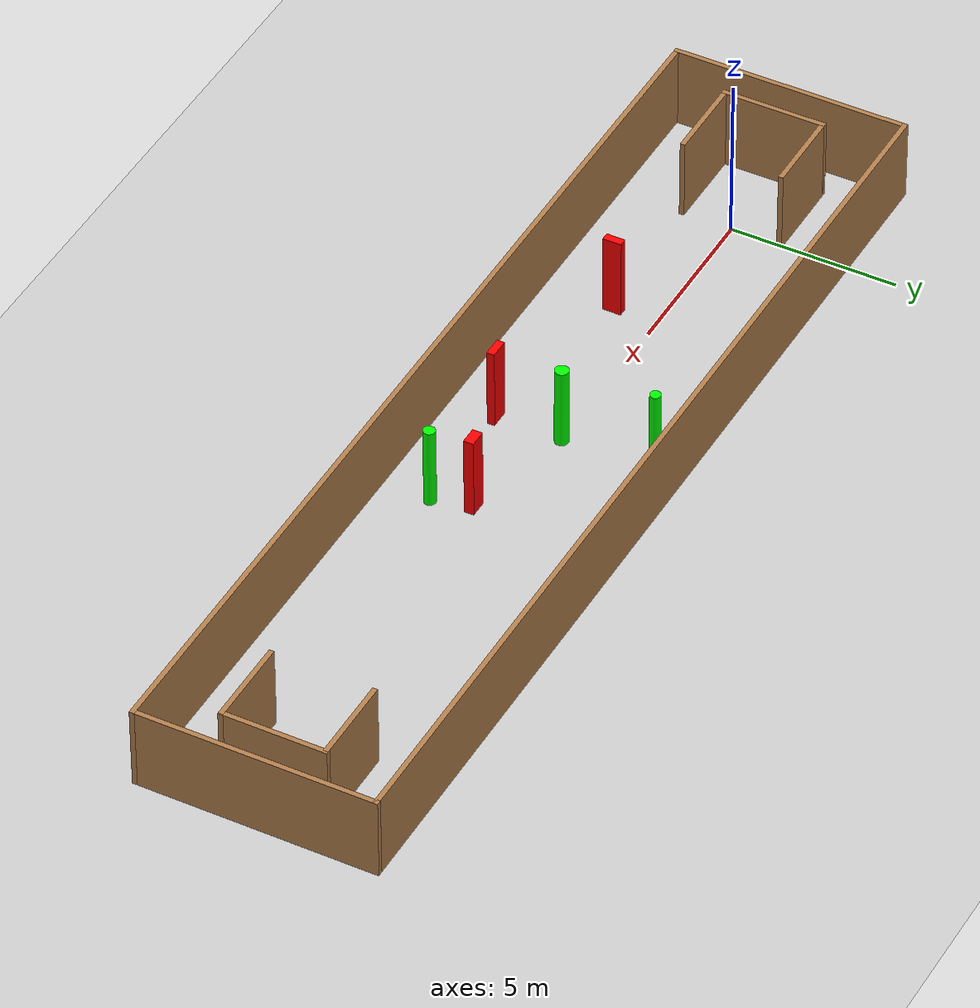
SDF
<sdf version="1.7">
 <world name="default">
  <light name="sun" type="directional">
   <pose>0 0 10 0 -0 0</pose>
   <diffuse>0.8 0.8 0.8 1</diffuse>
   <specular>0.2 0.2 0.2 1</specular>
   <attenuation>
    <range>1000</range>
    <constant>0.9</constant>
    <linear>0.01</linear>
    <quadratic>0.001</quadratic>
   </attenuation>
   <direction>-0.5 0.1 -0.9</direction>
   <spot><inner_angle>0</inner_angle><outer_angle>0</outer_angle><falloff>0</falloff></spot>
  </light>
  <model name="ground_plane">
   <static>1</static>
   <link name="link">
    <collision name="collision">
     <geometry><plane><normal>0 0 1</normal><size>100 100</size></plane></geometry>
     <surface>
      <contact><collide_bitmask>65535</collide_bitmask></contact>
      <friction><ode><mu>100</mu><mu2>50</mu2></ode></friction>
     </surface>
    </collision>
    <visual name="visual">
     <cast_shadows>0</cast_shadows>
     <geometry><plane><normal>0 0 1</normal><size>100 100</size></plane></geometry>
     <material>
      <script><uri>file://media/materials/scripts/gazebo.material</uri><name>Gazebo/Grey</name></script>
     </material>
    </visual>
   </link>
  </model>
  <gravity>0 0 -9.8</gravity>
  <magnetic_field>6e-06 2.3e-05 -4.2e-05</magnetic_field>
  <atmosphere type="adiabatic"/>
  <physics type="ode">
   <max_step_size>0.001</max_step_size>
   <real_time_factor>1</real_time_factor>
   <real_time_update_rate>1000</real_time_update_rate>
  </physics>
  <scene><ambient>0.4 0.4 0.4 1</ambient><background>0.7 0.7 0.7 1</background><shadows>1</shadows></scene>
  <spherical_coordinates>
   <surface_model>EARTH_WGS84</surface_model>
   <latitude_deg>0</latitude_deg>
   <longitude_deg>0</longitude_deg>
   <elevation>0</elevation>
   <heading_deg>0</heading_deg>
  </spherical_coordinates>
  <model name="my_base_walls">
   <link name="Wall_0">
    <collision name="Wall_0_Collision">
     <geometry><box><size>7.15 0.15 2.5</size></box></geometry>
     <pose>0 0 1.25 0 -0 0</pose>
    </collision>
    <visual name="Wall_0_Visual">
     <pose>0 0 1.25 0 -0 0</pose>
     <geometry><box><size>7.15 0.15 2.5</size></box></geometry>
     <material>
      <script><uri>file://media/materials/scripts/gazebo.material</uri><name>Gazebo/Wood</name></script>
      <ambient>1 1 1 1</ambient>
     </material>
     <meta><layer>0</layer></meta>
    </visual>
    <pose>-15 0 0 0 -0 1.5708</pose>
   </link>
   <link name="Wall_10">
    <collision name="Wall_10_Collision">
     <geometry><box><size>2.65 0.15 2.5</size></box></geometry>
     <pose>0 0 1.25 0 -0 0</pose>
    </collision>
    <visual name="Wall_10_Visual">
     <pose>0 0 1.25 0 -0 0</pose>
     <geometry><box><size>2.65 0.15 2.5</size></box></geometry>
     <material>
      <script><uri>file://media/materials/scripts/gazebo.material</uri><name>Gazebo/Wood</name></script>
      <ambient>1 1 1 1</ambient>
     </material>
     <meta><layer>0</layer></meta>
    </visual>
    <pose>-12.75 -1.5 0 0 -0 0</pose>
   </link>
   <link name="Wall_12">
    <collision name="Wall_12_Collision">
     <geometry><box><size>2.65 0.15 2.5</size></box></geometry>
     <pose>0 0 1.25 0 -0 0</pose>
    </collision>
    <visual name="Wall_12_Visual">
     <pose>0 0 1.25 0 -0 0</pose>
     <geometry><box><size>2.65 0.15 2.5</size></box></geometry>
     <material>
      <script><uri>file://media/materials/scripts/gazebo.material</uri><name>Gazebo/Wood</name></script>
      <ambient>1 1 1 1</ambient>
     </material>
     <meta><layer>0</layer></meta>
    </visual>
    <pose>-12.75 1.5 0 0 -0 0</pose>
   </link>
   <link name="Wall_14">
    <collision name="Wall_14_Collision">
     <geometry><box><size>3.15 0.15 2.5</size></box></geometry>
     <pose>0 0 1.25 0 -0 0</pose>
    </collision>
    <visual name="Wall_14_Visual">
     <pose>0 0 1.25 0 -0 0</pose>
     <geometry><box><size>3.15 0.15 2.5</size></box></geometry>
     <material>
      <script><uri>file://media/materials/scripts/gazebo.material</uri><name>Gazebo/Wood</name></script>
      <ambient>1 1 1 1</ambient>
     </material>
     <meta><layer>0</layer></meta>
    </visual>
    <pose>14 0 0 0 -0 -1.5708</pose>
   </link>
   <link name="Wall_15">
    <collision name="Wall_15_Collision">
     <geometry><box><size>2.65 0.15 2.5</size></box></geometry>
     <pose>0 0 1.25 0 -0 0</pose>
    </collision>
    <visual name="Wall_15_Visual">
     <pose>0 0 1.25 0 -0 0</pose>
     <geometry><box><size>2.65 0.15 2.5</size></box></geometry>
     <material>
      <script><uri>file://media/materials/scripts/gazebo.material</uri><name>Gazebo/Wood</name></script>
      <ambient>1 1 1 1</ambient>
     </material>
     <meta><layer>0</layer></meta>
    </visual>
    <pose>12.75 -1.5 0 0 -0 3.14159</pose>
   </link>
   <link name="Wall_17">
    <collision name="Wall_17_Collision">
     <geometry><box><size>2.65 0.15 2.5</size></box></geometry>
     <pose>0 0 1.25 0 -0 0</pose>
    </collision>
    <visual name="Wall_17_Visual">
     <pose>0 0 1.25 0 -0 0</pose>
     <geometry><box><size>2.65 0.15 2.5</size></box></geometry>
     <material>
      <script><uri>file://media/materials/scripts/gazebo.material</uri><name>Gazebo/Wood</name></script>
      <ambient>1 1 1 1</ambient>
     </material>
     <meta><layer>0</layer></meta>
    </visual>
    <pose>12.75 1.5 0 0 -0 3.14159</pose>
   </link>
   <link name="Wall_2">
    <collision name="Wall_2_Collision">
     <geometry><box><size>30.15 0.15 2.5</size></box></geometry>
     <pose>0 0 1.25 0 -0 0</pose>
    </collision>
    <visual name="Wall_2_Visual">
     <pose>0 0 1.25 0 -0 0</pose>
     <geometry><box><size>30.15 0.15 2.5</size></box></geometry>
     <material>
      <script><uri>file://media/materials/scripts/gazebo.material</uri><name>Gazebo/Wood</name></script>
      <ambient>1 1 1 1</ambient>
     </material>
     <meta><layer>0</layer></meta>
    </visual>
    <pose>-0 -3.5 0 0 -0 0</pose>
   </link>
   <link name="Wall_4">
    <collision name="Wall_4_Collision">
     <geometry><box><size>30.15 0.15 2.5</size></box></geometry>
     <pose>0 0 1.25 0 -0 0</pose>
    </collision>
    <visual name="Wall_4_Visual">
     <pose>0 0 1.25 0 -0 0</pose>
     <geometry><box><size>30.15 0.15 2.5</size></box></geometry>
     <material>
      <script><uri>file://media/materials/scripts/gazebo.material</uri><name>Gazebo/Wood</name></script>
      <ambient>1 1 1 1</ambient>
     </material>
     <meta><layer>0</layer></meta>
    </visual>
    <pose>-0 3.5 0 0 -0 0</pose>
   </link>
   <link name="Wall_6">
    <collision name="Wall_6_Collision">
     <geometry><box><size>7.15 0.15 2.5</size></box></geometry>
     <pose>0 0 1.25 0 -0 0</pose>
    </collision>
    <visual name="Wall_6_Visual">
     <pose>0 0 1.25 0 -0 0</pose>
     <geometry><box><size>7.15 0.15 2.5</size></box></geometry>
     <material>
      <script><uri>file://media/materials/scripts/gazebo.material</uri><name>Gazebo/Wood</name></script>
      <ambient>1 1 1 1</ambient>
     </material>
     <meta><layer>0</layer></meta>
    </visual>
    <pose>15 0 0 0 -0 -1.5708</pose>
   </link>
   <link name="Wall_9">
    <collision name="Wall_9_Collision">
     <geometry><box><size>3.15 0.15 2.5</size></box></geometry>
     <pose>0 0 1.25 0 -0 0</pose>
    </collision>
    <visual name="Wall_9_Visual">
     <pose>0 0 1.25 0 -0 0</pose>
     <geometry><box><size>3.15 0.15 2.5</size></box></geometry>
     <material>
      <script><uri>file://media/materials/scripts/gazebo.material</uri><name>Gazebo/Wood</name></script>
      <ambient>1 1 1 1</ambient>
     </material>
     <meta><layer>0</layer></meta>
    </visual>
    <pose>-14 0 0 0 -0 -1.5708</pose>
   </link>
   <static>1</static>
   <pose>11.5 0 0 0 -0 0</pose>
  </model>
  <model name="cylinder1">
   <static>1</static>
   <link name="link">
    <inertial>
     <mass>1</mass>
     <inertia><ixx>0.5</ixx><ixy>0</ixy><ixz>0</ixz><iyy>0.5</iyy><iyz>0</iyz><izz>1</izz></inertia>
    </inertial>
    <collision name="collision">
     <geometry><cylinder><radius>0.16235685343260145</radius><length>2.5</length></cylinder></geometry>
    </collision>
    <visual name="visual">
     <geometry><cylinder><radius>0.16235685343260145</radius><length>2.5</length></cylinder></geometry>
     <material>
      <ambient>0 1 0 1</ambient>
      <diffuse>0 1 0 1</diffuse>
      <specular>0.1 0.1 0.1 1</specular>
      <emissive>0 0 0 0</emissive>
     </material>
    </visual>
   </link>
   <pose>9.606386762093589 2.5933831909226743 1.25 0 0 0</pose>
  </model>
  <model name="cylinder2">
   <static>1</static>
   <link name="link">
    <inertial>
     <mass>1</mass>
     <inertia><ixx>0.5</ixx><ixy>0</ixy><ixz>0</ixz><iyy>0.5</iyy><iyz>0</iyz><izz>1</izz></inertia>
    </inertial>
    <collision name="collision">
     <geometry><cylinder><radius>0.20426902591708765</radius><length>2.5</length></cylinder></geometry>
    </collision>
    <visual name="visual">
     <geometry><cylinder><radius>0.20426902591708765</radius><length>2.5</length></cylinder></geometry>
     <material>
      <ambient>0 1 0 1</ambient>
      <diffuse>0 1 0 1</diffuse>
      <specular>0.1 0.1 0.1 1</specular>
      <emissive>0 0 0 0</emissive>
     </material>
    </visual>
   </link>
   <pose>9.902645483791208 -0.03990646111953522 1.25 0 0 0</pose>
  </model>
  <model name="cylinder3">
   <static>1</static>
   <link name="link">
    <inertial>
     <mass>1</mass>
     <inertia><ixx>0.5</ixx><ixy>0</ixy><ixz>0</ixz><iyy>0.5</iyy><iyz>0</iyz><izz>1</izz></inertia>
    </inertial>
    <collision name="collision">
     <geometry><cylinder><radius>0.17462445521669845</radius><length>2.5</length></cylinder></geometry>
    </collision>
    <visual name="visual">
     <geometry><cylinder><radius>0.17462445521669845</radius><length>2.5</length></cylinder></geometry>
     <material>
      <ambient>0 1 0 1</ambient>
      <diffuse>0 1 0 1</diffuse>
      <specular>0.1 0.1 0.1 1</specular>
      <emissive>0 0 0 0</emissive>
     </material>
    </visual>
   </link>
   <pose>13.646167513567086 -1.99242930473195 1.25 0 0 0</pose>
  </model>
  <model name="box1">
   <static>1</static>
   <link name="link">
    <inertial>
     <mass>1</mass>
     <inertia><ixx>0.083</ixx><ixy>0</ixy><ixz>0</ixz><iyy>0.083</iyy><iyz>0</iyz><izz>0.083</izz></inertia>
    </inertial>
    <collision name="collision">
     <geometry><box><size>0.23795191295777043 0.5594704901477481 2.5</size></box></geometry>
    </collision>
    <visual name="visual">
     <geometry><box><size>0.23795191295777043 0.5594704901477481 2.5</size></box></geometry>
     <material>
      <ambient>1 0 0 1</ambient>
      <diffuse>1 0 0 1</diffuse>
      <specular>0.1 0.1 0.1 1</specular>
      <emissive>0 0 0 0</emissive>
     </material>
    </visual>
    <sensor name="my_contact" type="contact">
     <contact><collision>box_collision</collision><topic>__default_topic__</topic></contact>
    </sensor>
   </link>
   <pose>4.5050014400419585 -1.2988542394591862 1.25 0 0 0</pose>
  </model>
  <model name="box2">
   <static>1</static>
   <link name="link">
    <inertial>
     <mass>1</mass>
     <inertia><ixx>0.083</ixx><ixy>0</ixy><ixz>0</ixz><iyy>0.083</iyy><iyz>0</iyz><izz>0.083</izz></inertia>
    </inertial>
    <collision name="collision">
     <geometry><box><size>0.5803164040148412 0.22979174825839332 2.5</size></box></geometry>
    </collision>
    <visual name="visual">
     <geometry><box><size>0.5803164040148412 0.22979174825839332 2.5</size></box></geometry>
     <material>
      <ambient>1 0 0 1</ambient>
      <diffuse>1 0 0 1</diffuse>
      <specular>0.1 0.1 0.1 1</specular>
      <emissive>0 0 0 0</emissive>
     </material>
    </visual>
    <sensor name="my_contact" type="contact">
     <contact><collision>box_collision</collision><topic>__default_topic__</topic></contact>
    </sensor>
   </link>
   <pose>9.917565189287707 -2.016443510721629 1.25 0 0 0</pose>
  </model>
  <model name="box3">
   <static>1</static>
   <link name="link">
    <inertial>
     <mass>1</mass>
     <inertia><ixx>0.083</ixx><ixy>0</ixy><ixz>0</ixz><iyy>0.083</iyy><iyz>0</iyz><izz>0.083</izz></inertia>
    </inertial>
    <collision name="collision">
     <geometry><box><size>0.5135354159072474 0.296467463701062 2.5</size></box></geometry>
    </collision>
    <visual name="visual">
     <geometry><box><size>0.5135354159072474 0.296467463701062 2.5</size></box></geometry>
     <material>
      <ambient>1 0 0 1</ambient>
      <diffuse>1 0 0 1</diffuse>
      <specular>0.1 0.1 0.1 1</specular>
      <emissive>0 0 0 0</emissive>
     </material>
    </visual>
    <sensor name="my_contact" type="contact">
     <contact><collision>box_collision</collision><topic>__default_topic__</topic></contact>
    </sensor>
   </link>
   <pose>13.340254811934663 -0.8535363272037548 1.25 0 0 0</pose>
  </model>
 </world>
</sdf>
